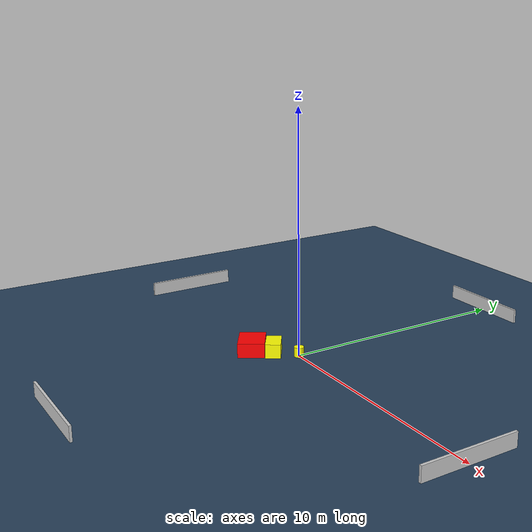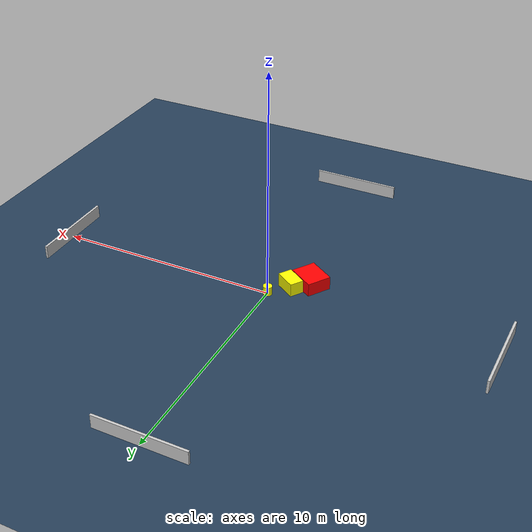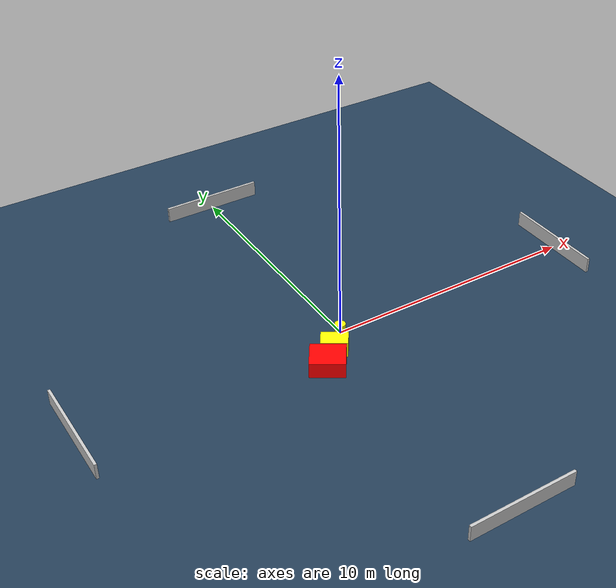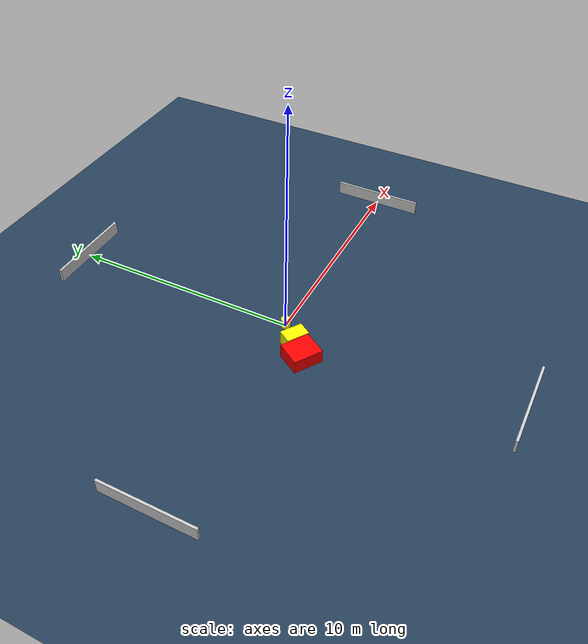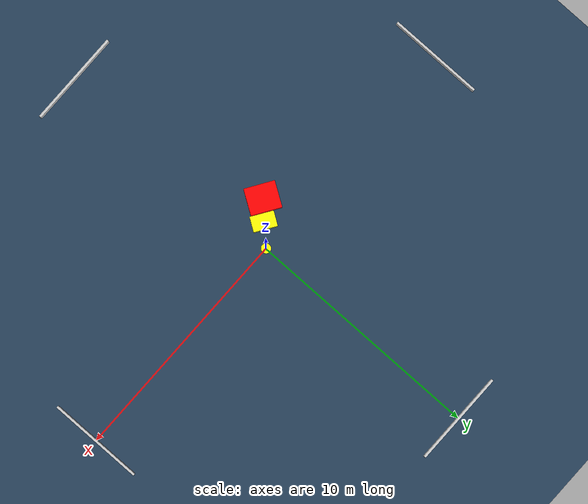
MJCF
<?xml version="1.0" ?>
<mujoco model="generated_environment">
  <option timestep="0.01" integrator="RK4" cone="elliptic"/>
  <default>
    <geom density="1"/>
  </default>
  <asset>
    <texture builtin="gradient" height="3072" name="skybox" rgb1="0.3 0.5 0.7" rgb2="0 0 0" type="skybox" width="512"/>
    <texture builtin="checker" height="300" name="groundplane" rgb1="0.2 0.3 0.4" rgb2="0.1 0.2 0.3" type="2d" width="300"/>
    <material name="groundplane" reflectance="0.2" texrepeat="5 5" texture="groundplane"/>
  </asset>
  <worldbody>
    <light dir="0 0 -1" directional="true" pos="0 0 1.5"/>
    <geom condim="3" friction="0.5 0.005 0.001" material="groundplane" name="floor" pos="0 0 0" size="0 0 0.05" type="plane"/>
    <body name="walls">
      <geom name="wall_1" condim="4" pos="-10.0 0.0 0.3" rgba="0.800000011920929 0.800000011920929 0.800000011920929 1.0" size="0.05 2.0 0.3" type="box"/>
      <geom name="wall_2" condim="4" pos="10.0 0.0 0.3" rgba="0.800000011920929 0.800000011920929 0.800000011920929 1.0" size="0.05 2.0 0.3" type="box"/>
      <geom name="wall_3" condim="4" pos="0.0 -10.0 0.3" rgba="0.800000011920929 0.800000011920929 0.800000011920929 1.0" size="2.0 0.05 0.3" type="box"/>
      <geom name="wall_4" condim="4" pos="0.0 10.0 0.3" rgba="0.800000011920929 0.800000011920929 0.800000011920929 1.0" size="2.0 0.05 0.3" type="box"/>
    </body>
    <body name="robot">
      <joint name="joint_x" type="slide" pos="0 0 0" axis="1 0 0"/>
      <joint name="joint_y" type="slide" pos="0 0 0" axis="0 1 0"/>
      <geom name="robot" type="cylinder" pos="0.0 0.0 0.2" size="0.2 0.2 0.0" mass="5.0" friction="1.0 0.005 0.0001" condim="4" rgba="1.0 1.0 0.0 1.0"/>
    </body>
    <body name="obstacle_1_movable">
      <geom name="obstacle_1_movable" condim="4" pos="-0.7218525612330203 -0.761354978568854 0.3" euler="0 0 326.5317220107717" friction="0.0 0.005 0.001" rgba="1.0 1.0 0.0 1.0" size="0.4898772383367833 0.31270025027931253 0.3" type="box" mass="0.1"/>
      <joint type="free"/>
    </body>
    <body name="obstacle_2_static">
      <geom name="obstacle_2_static" condim="4" pos="-1.3837850978845654 -1.389129839391076 0.3" euler="0 0 237.14724132094815" friction="0.0 0.005 0.001" rgba="1.0 0.0 0.0 1.0" size="0.547164858597626 0.6368011273079102 0.3" type="box"/>
    </body>
  </worldbody>
  <actuator>
    <motor name="actuator_x" joint="joint_x" gear="1" ctrlrange="-1 1"/>
    <motor name="actuator_y" joint="joint_y" gear="1" ctrlrange="-1 1"/>
  </actuator>
</mujoco>
